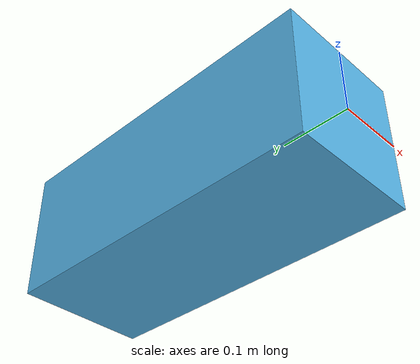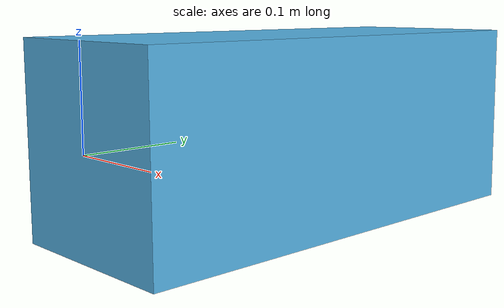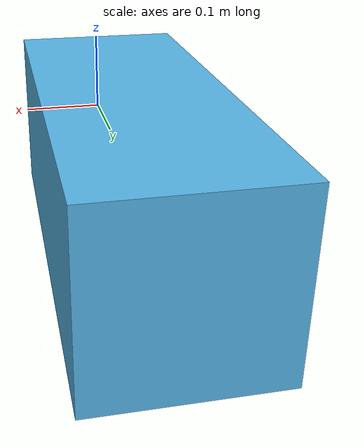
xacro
<?xml version="1.0"?>
<robot name="dynamixel_test" xmlns:xacro="http://ros.org/wiki/xacro">

  <link name="world"/>

  <joint name="joint1" type="continuous">
    <parent link="world"/>
    <child link="link1"/>
    <axis xyz="0 0 1"/>
  </joint>

  <link name="link1">
    <visual>
      <origin xyz="0 0.25 0" rpy="0 0 0"/>
      <geometry>
        <box size="0.2 0.5 0.2"/>
      </geometry>
      <color rgba="0.8 0.0 0.0 1.0"/>
    </visual>
  </link>

  <ros2_control name="ros2_control_dynamixel" type="system">
    <hardware>
      <plugin>dynamixel_hardware/DynamixelHardware</plugin>
      <param name="usb_port">/dev/ttyUSB0</param>
      <param name="baud_rate">1000000</param>
      <param name="use_dummy">false</param>
    </hardware>
    <joint name="joint1">
      <param name="id">22</param>
      <param name="protocol">TTL</param>
      <command_interface name="position"/>
      <command_interface name="velocity"/>
      <command_interface name="effort"/>
      <state_interface name="position"/>
      <state_interface name="velocity"/>
      <state_interface name="effort"/>
    </joint>
  </ros2_control>

</robot>
